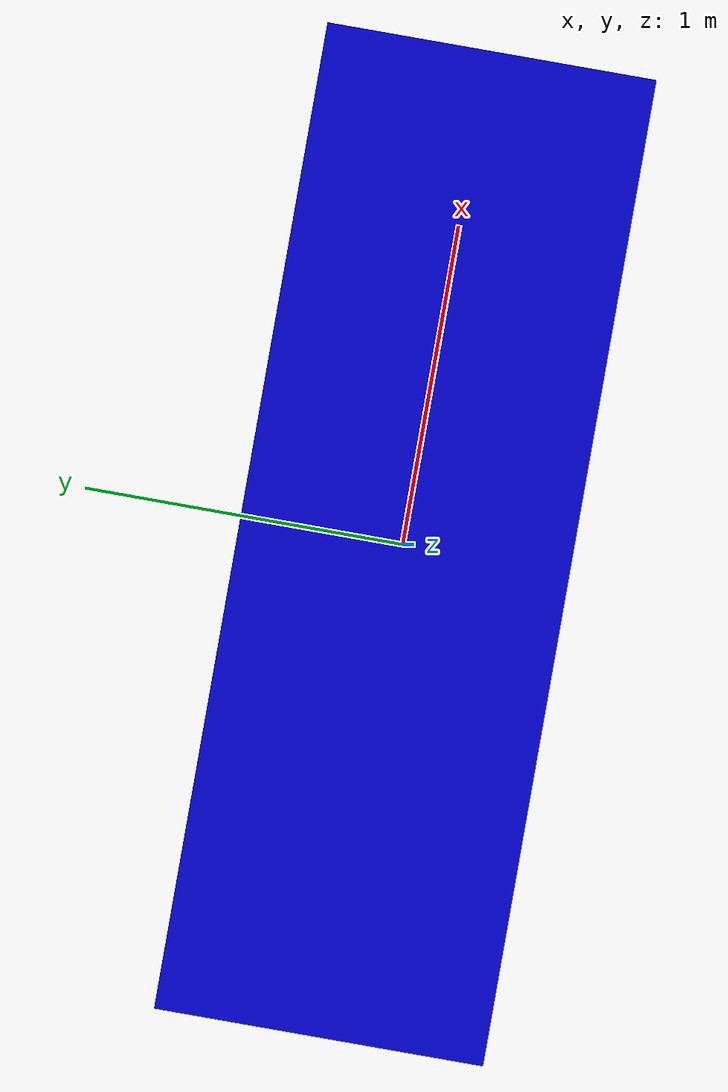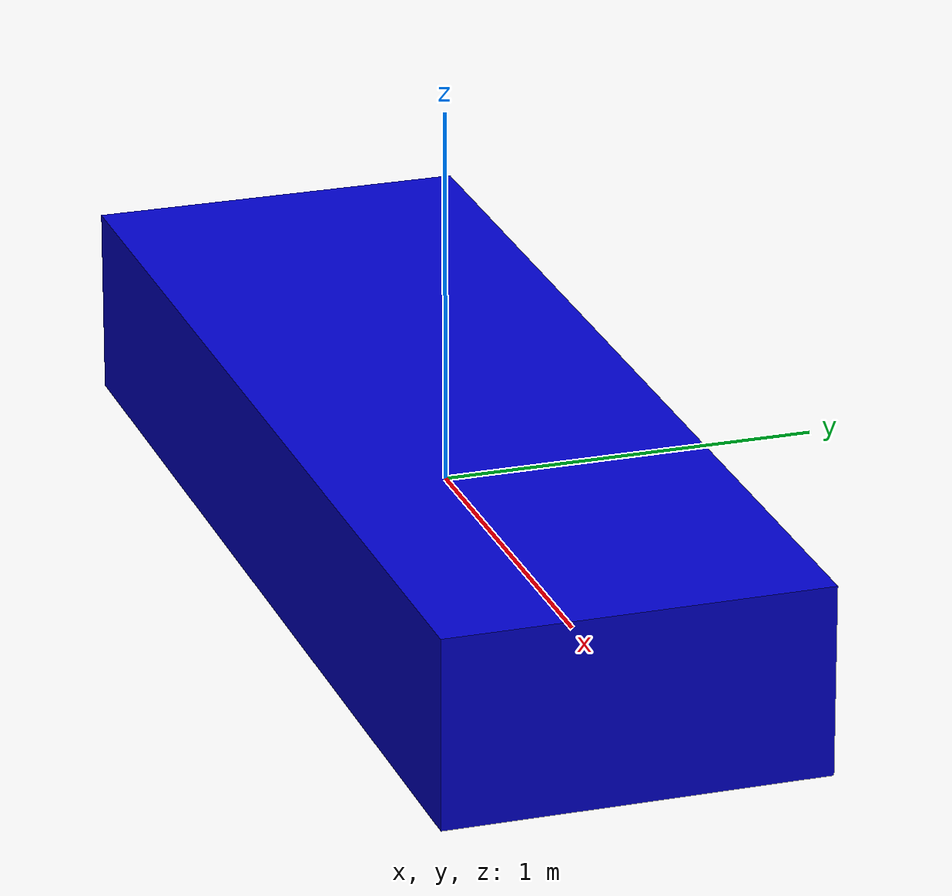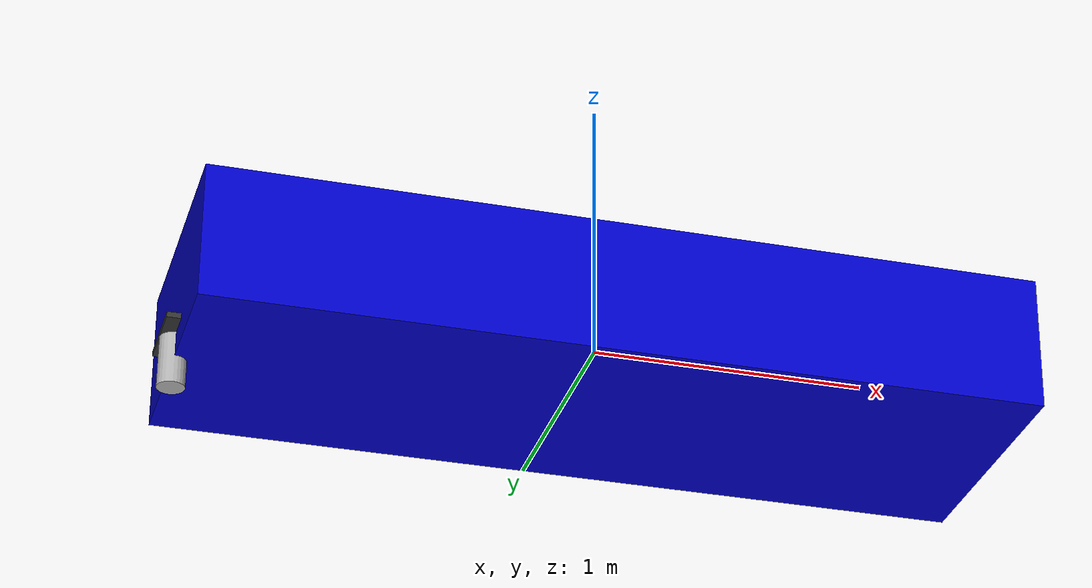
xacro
<?xml version="1.0"?>
<robot name="boat_model" xmlns:xacro="http://ros.org/wiki/xacro">

    <!-- Boat Hull -->
    <link name="hull">
        <visual>
            <geometry>
                <box size="3 1 0.5" />
            </geometry>
            <material name="blue">
                <color rgba="0.0 0.0 0.8 1.0" />
            </material>
        </visual>
        <collision>
            <geometry>
                <box size="3 1 0.5" />
            </geometry>
        </collision>
        <inertial>
            <mass value="50" />
            <origin xyz="0 0 0" />
            <inertia ixx="5" ixy="0" ixz="0" iyy="5" iyz="0" izz="5" />
        </inertial>
    </link>

    <!-- Rudder -->
    <link name="rudder">
        <visual>
            <geometry>
                <box size="0.1 0.3 0.02" />
            </geometry>
            <material name="dark_gray">
                <color rgba="0.2 0.2 0.2 1" />
            </material>
        </visual>
        <collision>
            <geometry>
                <box size="0.1 0.3 0.02" />
            </geometry>
        </collision>
        <inertial>
            <mass value="1" />
            <origin xyz="0 0 0" />
            <inertia ixx="0.01" ixy="0" ixz="0" iyy="0.01" iyz="0" izz="0.01" />
        </inertial>
    </link>

    <!-- Joint between hull and rudder -->
    <joint name="rudder_joint" type="revolute">
        <parent link="hull" />
        <child link="rudder" />
        <origin xyz="-1.5 0 -0.15" rpy="0 0 0" />
        <axis xyz="0 0 1" />
        <limit lower="-0.7854" upper="0.7854" effort="10" velocity="1" />
    </joint>

    <!-- Motor/Propeller -->
    <link name="motor">
        <visual>
            <geometry>
                <cylinder length="0.2" radius="0.05" />
            </geometry>
            <material name="silver">
                <color rgba="0.7 0.7 0.7 1" />
            </material>
        </visual>
        <collision>
            <geometry>
                <cylinder length="0.2" radius="0.05" />
            </geometry>
        </collision>
        <inertial>
            <mass value="2" />
            <origin xyz="0 0 0" />
            <inertia ixx="0.01" ixy="0" ixz="0" iyy="0.01" iyz="0" izz="0.01" />
        </inertial>
    </link>

    <!-- Joint between hull and motor (fixed) -->
    <joint name="motor_joint" type="fixed">
        <parent link="hull" />
        <child link="motor" />
        <origin xyz="-1.5 0 -0.25" rpy="0 0 0" />
    </joint>

</robot>
